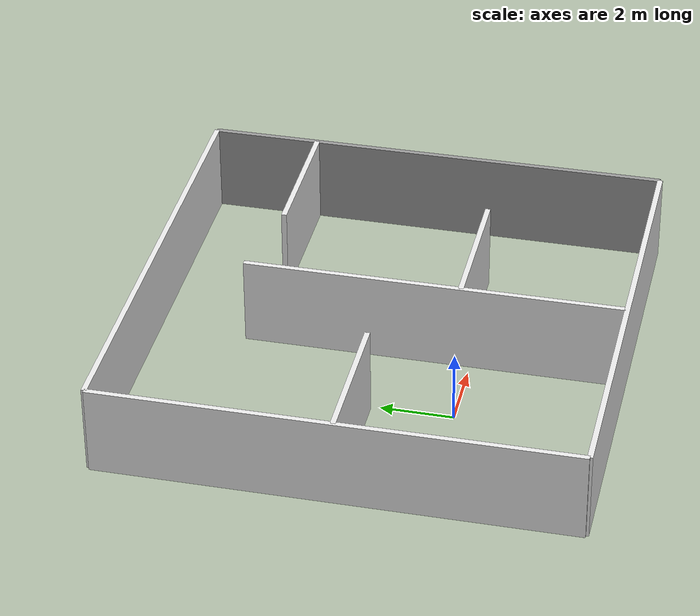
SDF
<?xml version='1.0'?>
<sdf version='1.6'>
  <model name='walls'>
    <pose frame=''>2.39208 2.30864 0 0 -0 0</pose>
    <link name='Wall_1'>
      <collision name='Wall_1_Collision'>
        <geometry>
          <box>
            <size>13 0.15 2.5</size>
          </box>
        </geometry>
        <pose frame=''>0 0 1.25 0 -0 0</pose>
      </collision>
      <visual name='Wall_1_Visual'>
        <pose frame=''>0 0 1.25 0 -0 0</pose>
        <geometry>
          <box>
            <size>13 0.15 2.5</size>
          </box>
        </geometry>
        <material>
          <script>
            <uri>file://media/materials/scripts/gazebo.material</uri>
            <name>Gazebo/White</name>
          </script>
          <ambient>1 1 1 1</ambient>
        </material>
      </visual>
      <pose frame=''>-6.5 -0 0 0 -0 1.57079632679</pose>
    </link>
    <link name='Wall_2'>
      <collision name='Wall_2_Collision'>
        <geometry>
          <box>
            <size>13 0.15 2.5</size>
          </box>
        </geometry>
        <pose frame=''>0 0 1.25 0 -0 0</pose>
      </collision>
      <visual name='Wall_2_Visual'>
        <pose frame=''>0 0 1.25 0 -0 0</pose>
        <geometry>
          <box>
            <size>13 0.15 2.5</size>
          </box>
        </geometry>
        <material>
          <script>
            <uri>file://media/materials/scripts/gazebo.material</uri>
            <name>Gazebo/White</name>
          </script>
          <ambient>1 1 1 1</ambient>
        </material>
      </visual>
      <pose frame=''>0 6.5 0 0 -0 0</pose>
    </link>
    <link name='Wall_3'>
      <collision name='Wall_3_Collision'>
        <geometry>
          <box>
            <size>13 0.15 2.5</size>
          </box>
        </geometry>
        <pose frame=''>0 0 1.25 0 -0 0</pose>
      </collision>
      <visual name='Wall_3_Visual'>
        <pose frame=''>0 0 1.25 0 -0 0</pose>
        <geometry>
          <box>
            <size>13 0.15 2.5</size>
          </box>
        </geometry>
        <material>
          <script>
            <uri>file://media/materials/scripts/gazebo.material</uri>
            <name>Gazebo/Grey</name>
          </script>
          <ambient>1 1 1 1</ambient>
        </material>
      </visual>
      <pose frame=''>6.5 0 0 0 0 -1.57079632679</pose>
    </link>
    <link name='Wall_4'>
      <collision name='Wall_4_Collision'>
        <geometry>
          <box>
            <size>13 0.15 2.5</size>
          </box>
        </geometry>
        <pose frame=''>0 0 1.25 0 -0 0</pose>
      </collision>
      <visual name='Wall_4_Visual'>
        <pose frame=''>0 0 1.25 0 -0 0</pose>
        <geometry>
          <box>
            <size>13 0.15 2.5</size>
          </box>
        </geometry>
        <material>
          <script>
            <uri>file://media/materials/scripts/gazebo.material</uri>
            <name>Gazebo/White</name>
          </script>
          <ambient>1 1 1 1</ambient>
        </material>
      </visual>
      <pose frame=''>0 -6.5 0 0 0 0</pose>
    </link>
    <link name='Wall_5'>
      <collision name='Wall_5_Collision'>
        <geometry>
          <box>
            <size>10.5 0.15 2.5</size>
          </box>
        </geometry>
        <pose frame=''>0 0 1.25 0 -0 0</pose>
      </collision>
      <visual name='Wall_5_Visual'>
        <pose frame=''>0 0 1.25 0 -0 0</pose>
        <geometry>
          <box>
            <size>10.5 0.15 2.5</size>
          </box>
        </geometry>
        <material>
          <script>
            <uri>file://media/materials/scripts/gazebo.material</uri>
            <name>Gazebo/White</name>
          </script>
          <ambient>1 1 1 1</ambient>
        </material>
      </visual>
      <pose frame=''>0 -1.25 0 0 0 -1.57079632679</pose>
    </link>
    <link name='Wall_6'>
      <collision name='Wall_6_Collision'>
        <geometry>
          <box>
            <size>4 0.15 2.5</size>
          </box>
        </geometry>
        <pose frame=''>0 0 1.25 0 -0 0</pose>
      </collision>
      <visual name='Wall_6_Visual'>
        <pose frame=''>0 0 1.25 0 -0 0</pose>
        <geometry>
          <box>
            <size>4 0.15 2.5</size>
          </box>
        </geometry>
        <material>
          <script>
            <uri>file://media/materials/scripts/gazebo.material</uri>
            <name>Gazebo/White</name>
          </script>
          <ambient>1 1 1 1</ambient>
        </material>
      </visual>
      <pose frame=''>-4.5 0 0 0 -0 0</pose>
    </link>
    <link name='Wall_7'>
      <collision name='Wall_7_Collision'>
        <geometry>
          <box>
            <size>4 0.15 2.5</size>
          </box>
        </geometry>
        <pose frame=''>0 0 1.25 0 -0 0</pose>
      </collision>
      <visual name='Wall_7_Visual'>
        <pose frame=''>0 0 1.25 0 -0 0</pose>
        <geometry>
          <box>
            <size>4 0.15 2.5</size>
          </box>
        </geometry>
        <material>
          <script>
            <uri>file://media/materials/scripts/gazebo.material</uri>
            <name>Gazebo/White</name>
          </script>
          <ambient>1 1 1 1</ambient>
        </material>
      </visual>
      <pose frame=''>4.5 3.5 0 0 -0 0</pose>
    </link>
    <link name='Wall_8'>
      <collision name='Wall_8_Collision'>
        <geometry>
          <box>
            <size>4 0.15 2.5</size>
          </box>
        </geometry>
        <pose frame=''>0 0 1.25 0 -0 0</pose>
      </collision>
      <visual name='Wall_8_Visual'>
        <pose frame=''>0 0 1.25 0 -0 0</pose>
        <geometry>
          <box>
            <size>4 0.15 2.5</size>
          </box>
        </geometry>
        <material>
          <script>
            <uri>file://media/materials/scripts/gazebo.material</uri>
            <name>Gazebo/White</name>
          </script>
          <ambient>1 1 1 1</ambient>
        </material>
      </visual>
      <pose frame=''>2 -2 0 0 -0 0</pose>
    </link>
    <static>1</static>
  </model>
</sdf>
